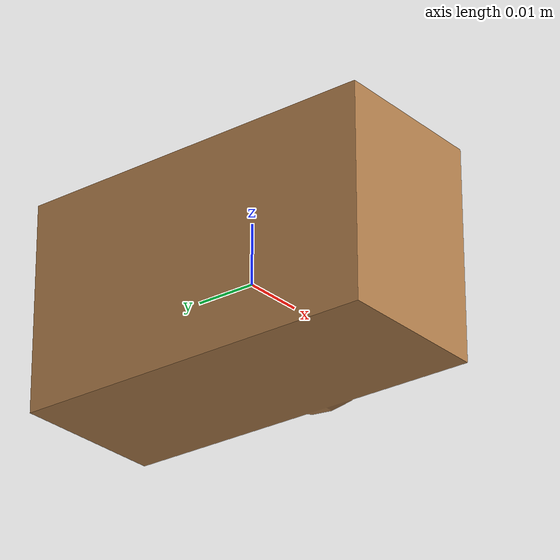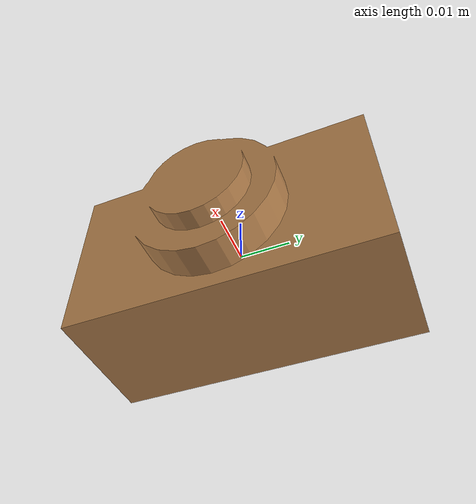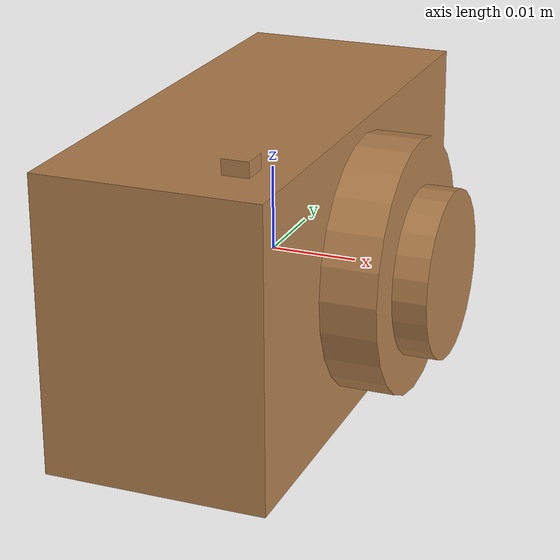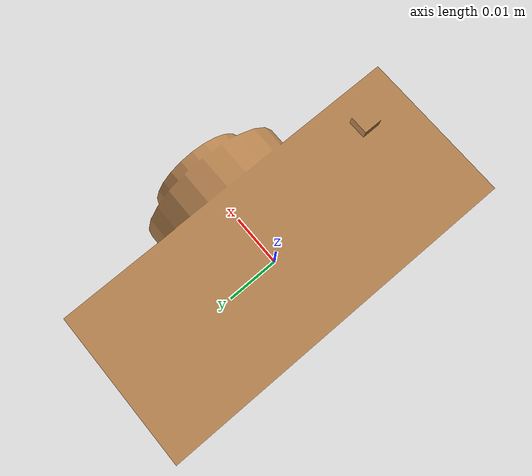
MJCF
<mujoco model="camera">
  <asset>
    <mesh file="meshes/camera.stl" name="camera_mesh" scale="0.6 0.6 0.6"/>
    <texture file="../textures/dark-wood.png" name="tex-cam"/>
    <material name="cam" reflectance="0.4" texrepeat="1 1" texture="tex-cam" texuniform="true"/>
  </asset>
  <worldbody>
    <body>
      <body name="collision">
        <geom pos="0 0 0" mesh="camera_mesh" type="mesh" solimp="0.998 0.998 0.001" solref="0.001 1" density="50" friction="0.95 0.3 0.1" material="cam" group="1"/>
      </body>
      <body name="visual">
        <geom pos="0 0 0" mesh="camera_mesh" type="mesh" material="cam"  conaffinity="0" contype="0"  group="0"/>
        <geom pos="0 0 0" mesh="camera_mesh" type="mesh" material="cam"  conaffinity="0" contype="0"  group="1"/>
      </body>
      <site rgba="0 0 0 0" size="0.005" pos="0 0 -0.045" name="bottom_site"/>
      <site rgba="0 0 0 0" size="0.005" pos="0 0 0.03" name="top_site"/>
      <site rgba="0 0 0 0" size="0.005" pos="0.03 0.005 0" name="horizontal_radius_site"/>
    </body>
  </worldbody>
</mujoco>
